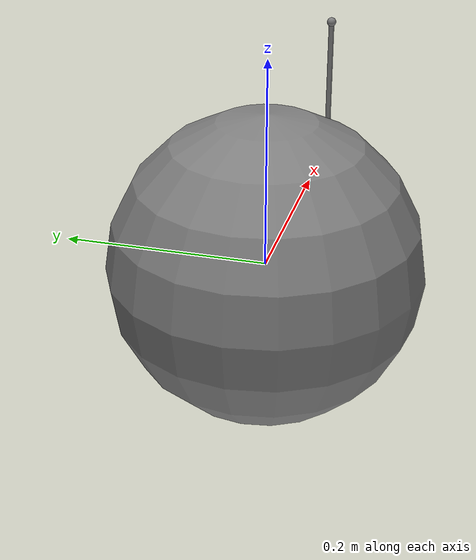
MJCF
<mujoco>
      <worldbody>
        <body name="b0">
          <geom name="wrap_sphere" type="sphere" size="0.15"/>
          <site name="s1" pos="0.3 0 0.15"/>
          <site name="side_exact" pos="0.15 0 0"/>
          <body name="b1">
            <joint name="j1" type="hinge" axis="0 1 0"/>
            <geom type="sphere" size="0.01" mass="0.1"/>
            <site name="s2" pos="0.3 0 -0.15"/>
          </body>
        </body>
      </worldbody>
      <tendon>
        <spatial name="t_boundary">
          <site site="s1"/>
          <geom geom="wrap_sphere" sidesite="side_exact"/>
          <site site="s2"/>
        </spatial>
      </tendon>
    </mujoco>
